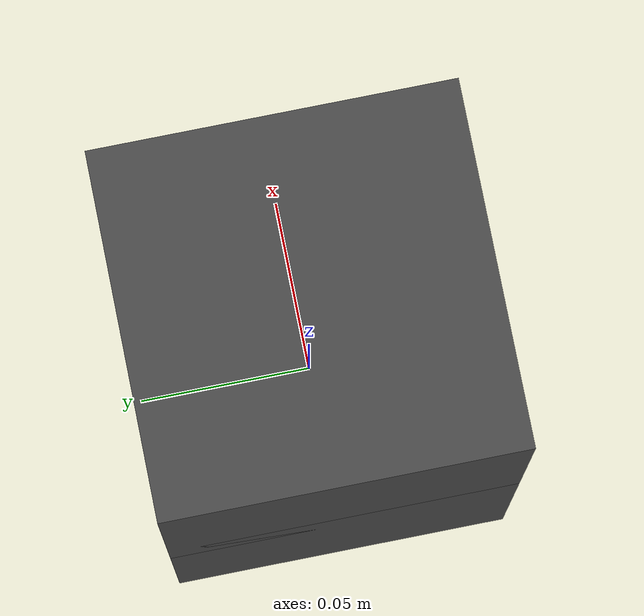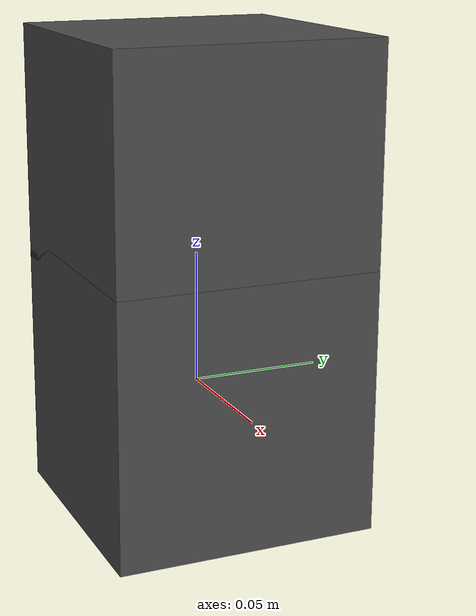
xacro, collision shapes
<?xml version="1.0"?>
<robot name="dynamixel_pantilt_std" xmlns:xacro="http://www.ros.org/wiki/xacro">

    <xacro:arg name="robot_id" default="robot" />
    <xacro:arg name="prefix" default="$(arg robot_id)_" />
    <xacro:arg name="base_frame" default="world" />

    <xacro:include filename="$(find dynamixel_pantilt_description)/urdf/dynamixel_pantilt.urdf.xacro" />

    <gazebo>
        <plugin name="gazebo_ros_control" filename="libgazebo_ros_control.so">
        <robotSimType>gazebo_ros_control/DefaultRobotHWSim</robotSimType>
        <legacyModeNS>false</legacyModeNS>
        </plugin>
    </gazebo>

    <link name="world"/>

    <xacro:dynamixel_pantilt prefix="$(arg prefix)" parent ="$(arg base_frame)">
        <origin xyz="0 0 0" rpy="0 0 0"/>
    </xacro:dynamixel_pantilt>

</robot>

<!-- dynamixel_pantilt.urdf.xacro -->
<robot name="dynamixel_pantilt" xmlns:xacro="http://ros.org/wiki/xacro">
  <xacro:property name="PI" value="3.1415926535897931"/>

    <xacro:macro name="solid_cuboid_inertia" params="m h d w">
      <inertia  ixx="${(m*(h*h+d*d))/12}" ixy = "0" ixz = "0"
                iyy="${(m*(w*w+d*d))/12}" iyz = "0"
                izz="${(m*(w*w+h*h))/12}"
      />
    </xacro:macro>

  <xacro:macro name="dynamixel_pantilt" params="prefix parent hq:=false *origin">

    <joint name="${prefix}base_joint" type="fixed">
      <xacro:insert_block name="origin" />
      <parent link="${parent}"/>
      <child link="${prefix}base_link"/>
    </joint>

    <link name="${prefix}base_link">
      <visual>
        <origin xyz="0 0 0" rpy="0 0 0" />
        <geometry>
          <box size="0.01 0.01 0.01" />
        </geometry>
      </visual>

      <collision>
        <origin xyz="0 0 0" rpy="0 0 0"/>
        <geometry>
          <cylinder radius="0.01" length="0.01"/>
        </geometry>
      </collision>
      <inertial>
        <mass value="0.005" />
        <origin xyz="0 0 0" />
        <solid_cuboid_inertia m="0.005" h="0.05" d="0.05" w="0.05"/>
      </inertial>
    </link>

    <joint name="${prefix}dynamixel_pan_joint" type="revolute">
      <parent link="${prefix}base_link"/>
      <child link="${prefix}pan_link"/>
      <axis xyz="0 0 1"/>
      <limit lower="-0.95" upper="0.95" effort="100" velocity="50"/>
      <joint_properties friction="0.01" damping="0.01"/>
    </joint>

    <transmission name="${prefix}dynamixel_pan_trans">
        <type>transmission_interface/SimpleTransmission</type>
        <joint name="${prefix}dynamixel_pan_joint">
          <hardwareInterface>hardware_interface/PositionJointInterface</hardwareInterface>
        </joint>
        <actuator name="${prefix}dynamixel_pan_motor">
          <mechanicalReduction>1</mechanicalReduction>
          <hardwareInterface>hardware_interface/PositionJointInterface</hardwareInterface>
        </actuator>
    </transmission>

    <link name="${prefix}pan_link">
      <visual>
        <origin xyz="0 0 0" rpy="0 0 0"/>
        <geometry>
          <mesh filename="package://dynamixel_pantilt_description/meshes/pan_dynamixel.stl"/>
        </geometry>
        <material name="lightgrey">
          <color rgba="0.3 0.3 0.3 1"/>
        </material>
      </visual>
      <collision>
        <origin xyz="0 0 0" rpy="0 0 0"/>
        <geometry>
          <box size="0.1 0.1 0.1" />
        </geometry>
      </collision>
      <inertial>
        <mass value="1" />
        <origin xyz="0 0 0" />
        <solid_cuboid_inertia m="1" h="0.1" d="0.1" w="0.1"/>
      </inertial>
    </link>

    <!-- TILT JOINT/LINK -->
    <joint name="${prefix}dynamixel_tilt_joint" type="revolute">
      <origin xyz="0.0 0.0 0.08305" rpy="0 0 0"/>
      <parent link="${prefix}pan_link"/>
      <child link="${prefix}tilt_link"/>
      <axis xyz="0 -1 0"/>
      <limit lower="-0.26" upper="0.26" effort="100" velocity="5"/>
      <joint_properties friction="0.01" damping="0.01"/>
    </joint>

	<transmission name="${prefix}dynamixel_tilt_trans">
      <type>transmission_interface/SimpleTransmission</type>
      <joint name="${prefix}dynamixel_tilt_joint">
        <hardwareInterface>hardware_interface/PositionJointInterface</hardwareInterface>
      </joint>
      <actuator name="${prefix}dynamixel_tilt_motor">
        <mechanicalReduction>1</mechanicalReduction>
        <hardwareInterface>hardware_interface/PositionJointInterface</hardwareInterface>
      </actuator>
    </transmission>

    <link name="${prefix}tilt_link">
      <visual>
        <origin xyz="0 0 0" rpy="0 0 0"/>
        <geometry>
          <mesh filename="package://dynamixel_pantilt_description/meshes/tilt_dynamixel.stl"/>
        </geometry>
       <material name="lightgrey">
         <color rgba="0.3 0.3 0.3 1"/>
       </material>
      </visual>
      <collision>
        <origin xyz="0 0 0" rpy="0 0 0"/>
        <geometry>
          <box size="0.1 0.1 0.1" />
        </geometry>
      </collision>
      <inertial>
        <mass value="1" />
        <origin xyz="0 0 0" />
        <solid_cuboid_inertia m="1" h="0.1" d="0.1" w="0.1"/>
      </inertial>
    </link>

  </xacro:macro>
</robot>
